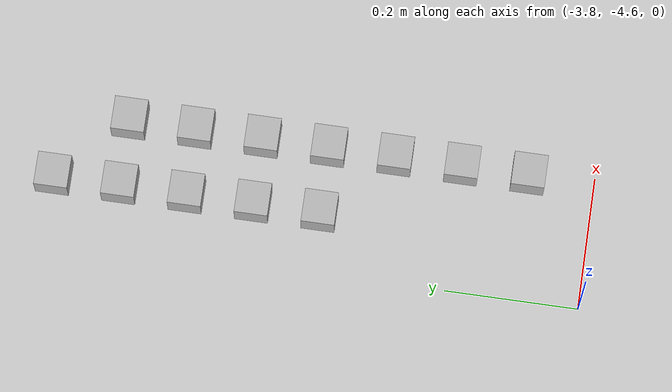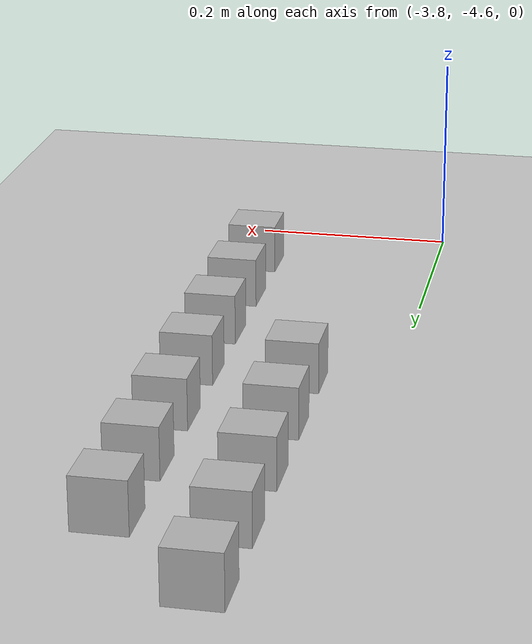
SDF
<sdf version="1.4">
 <world name="default">
  <model name="ground_plane">
   <static>1</static>
   <link name="link">
    <collision name="collision">
     <geometry><plane><normal>0 0 1</normal><size>100 100</size></plane></geometry>
     <surface><friction><ode><mu>100</mu><mu2>50</mu2></ode></friction></surface>
    </collision>
    <visual name="visual">
     <cast_shadows>0</cast_shadows>
     <geometry><plane><normal>0 0 1</normal><size>100 100</size></plane></geometry>
     <material>
      <script><uri>file://media/materials/scripts/gazebo.material</uri><name>Gazebo/Grey</name></script>
     </material>
    </visual>
    <velocity_decay><linear>0</linear><angular>0</angular></velocity_decay>
   </link>
  </model>
  <model name="at71">
   <static>0</static>
   <link name="link">
    <inertial>
     <mass>0.01</mass>
     <inertia><ixx>4e-05</ixx><ixy>0</ixy><ixz>0</ixz><iyy>4e-05</iyy><iyz>0</iyz><izz>4e-05</izz></inertia>
    </inertial>
    <visual name="visual">
     <transparency>0.1</transparency>
     <geometry><box><size>0.05 0.05 0.05</size></box></geometry>
     <material>
      <script>
       <uri>model://at0/materials/scripts</uri>
       <uri>model://at0/materials/textures</uri>
       <name>at0/Diffuse</name>
      </script>
     </material>
    </visual>
    <collision name="collision">
     <geometry><box><size>0.05 0.05 0.05</size></box></geometry>
     <surface><friction><ode><mu>0.8</mu><mu2>0.7</mu2></ode></friction></surface>
    </collision>
    <velocity_decay><linear>0</linear><angular>0</angular></velocity_decay>
   </link>
   <pose>-3.61043 -4.50066 0.024993 -2.9e-05 -2.9e-05 4e-06</pose>
  </model>
  <model name="at79">
   <static>0</static>
   <link name="link">
    <inertial>
     <mass>0.01</mass>
     <inertia><ixx>4e-05</ixx><ixy>0</ixy><ixz>0</ixz><iyy>4e-05</iyy><iyz>0</iyz><izz>4e-05</izz></inertia>
    </inertial>
    <visual name="visual">
     <transparency>0.1</transparency>
     <geometry><box><size>0.05 0.05 0.05</size></box></geometry>
     <material>
      <script>
       <uri>model://at0/materials/scripts</uri>
       <uri>model://at0/materials/textures</uri>
       <name>at0/Diffuse</name>
      </script>
     </material>
    </visual>
    <collision name="collision">
     <geometry><box><size>0.05 0.05 0.05</size></box></geometry>
     <surface><friction><ode><mu>0.8</mu><mu2>0.7</mu2></ode></friction></surface>
    </collision>
    <velocity_decay><linear>0</linear><angular>0</angular></velocity_decay>
   </link>
   <pose>-3.61043 -4.40066 0.024993 -2.9e-05 -2.9e-05 3e-06</pose>
  </model>
  <model name="at87">
   <static>0</static>
   <link name="link">
    <inertial>
     <mass>0.01</mass>
     <inertia><ixx>4e-05</ixx><ixy>0</ixy><ixz>0</ixz><iyy>4e-05</iyy><iyz>0</iyz><izz>4e-05</izz></inertia>
    </inertial>
    <visual name="visual">
     <transparency>0.1</transparency>
     <geometry><box><size>0.05 0.05 0.05</size></box></geometry>
     <material>
      <script>
       <uri>model://at0/materials/scripts</uri>
       <uri>model://at0/materials/textures</uri>
       <name>at0/Diffuse</name>
      </script>
     </material>
    </visual>
    <collision name="collision">
     <geometry><box><size>0.05 0.05 0.05</size></box></geometry>
     <surface><friction><ode><mu>0.8</mu><mu2>0.7</mu2></ode></friction></surface>
    </collision>
    <velocity_decay><linear>0</linear><angular>0</angular></velocity_decay>
   </link>
   <pose>-3.61043 -4.30066 0.024997 2.9e-05 2.9e-05 3e-06</pose>
  </model>
  <model name="at94">
   <static>0</static>
   <link name="link">
    <inertial>
     <mass>0.01</mass>
     <inertia><ixx>4e-05</ixx><ixy>0</ixy><ixz>0</ixz><iyy>4e-05</iyy><iyz>0</iyz><izz>4e-05</izz></inertia>
    </inertial>
    <visual name="visual">
     <transparency>0.1</transparency>
     <geometry><box><size>0.05 0.05 0.05</size></box></geometry>
     <material>
      <script>
       <uri>model://at0/materials/scripts</uri>
       <uri>model://at0/materials/textures</uri>
       <name>at0/Diffuse</name>
      </script>
     </material>
    </visual>
    <collision name="collision">
     <geometry><box><size>0.05 0.05 0.05</size></box></geometry>
     <surface><friction><ode><mu>0.8</mu><mu2>0.7</mu2></ode></friction></surface>
    </collision>
    <velocity_decay><linear>0</linear><angular>0</angular></velocity_decay>
   </link>
   <pose>-3.71043 -4.20066 0.024993 -2.9e-05 -2.9e-05 3e-06</pose>
  </model>
  <model name="at95">
   <static>0</static>
   <link name="link">
    <inertial>
     <mass>0.01</mass>
     <inertia><ixx>4e-05</ixx><ixy>0</ixy><ixz>0</ixz><iyy>4e-05</iyy><iyz>0</iyz><izz>4e-05</izz></inertia>
    </inertial>
    <visual name="visual">
     <transparency>0.1</transparency>
     <geometry><box><size>0.05 0.05 0.05</size></box></geometry>
     <material>
      <script>
       <uri>model://at0/materials/scripts</uri>
       <uri>model://at0/materials/textures</uri>
       <name>at0/Diffuse</name>
      </script>
     </material>
    </visual>
    <collision name="collision">
     <geometry><box><size>0.05 0.05 0.05</size></box></geometry>
     <surface><friction><ode><mu>0.8</mu><mu2>0.7</mu2></ode></friction></surface>
    </collision>
    <velocity_decay><linear>0</linear><angular>0</angular></velocity_decay>
   </link>
   <pose>-3.61043 -4.20066 0.024993 -2.9e-05 -2.9e-05 3e-06</pose>
  </model>
  <model name="at102">
   <static>0</static>
   <link name="link">
    <inertial>
     <mass>0.01</mass>
     <inertia><ixx>4e-05</ixx><ixy>0</ixy><ixz>0</ixz><iyy>4e-05</iyy><iyz>0</iyz><izz>4e-05</izz></inertia>
    </inertial>
    <visual name="visual">
     <transparency>0.1</transparency>
     <geometry><box><size>0.05 0.05 0.05</size></box></geometry>
     <material>
      <script>
       <uri>model://at0/materials/scripts</uri>
       <uri>model://at0/materials/textures</uri>
       <name>at0/Diffuse</name>
      </script>
     </material>
    </visual>
    <collision name="collision">
     <geometry><box><size>0.05 0.05 0.05</size></box></geometry>
     <surface><friction><ode><mu>0.8</mu><mu2>0.7</mu2></ode></friction></surface>
    </collision>
    <velocity_decay><linear>0</linear><angular>0</angular></velocity_decay>
   </link>
   <pose>-3.71043 -4.10066 0.024993 -2.9e-05 -2.9e-05 3e-06</pose>
  </model>
  <model name="at103">
   <static>0</static>
   <link name="link">
    <inertial>
     <mass>0.01</mass>
     <inertia><ixx>4e-05</ixx><ixy>0</ixy><ixz>0</ixz><iyy>4e-05</iyy><iyz>0</iyz><izz>4e-05</izz></inertia>
    </inertial>
    <visual name="visual">
     <transparency>0.1</transparency>
     <geometry><box><size>0.05 0.05 0.05</size></box></geometry>
     <material>
      <script>
       <uri>model://at0/materials/scripts</uri>
       <uri>model://at0/materials/textures</uri>
       <name>at0/Diffuse</name>
      </script>
     </material>
    </visual>
    <collision name="collision">
     <geometry><box><size>0.05 0.05 0.05</size></box></geometry>
     <surface><friction><ode><mu>0.8</mu><mu2>0.7</mu2></ode></friction></surface>
    </collision>
    <velocity_decay><linear>0</linear><angular>0</angular></velocity_decay>
   </link>
   <pose>-3.61043 -4.10066 0.024997 2.9e-05 2.9e-05 3e-06</pose>
  </model>
  <model name="at110">
   <static>0</static>
   <link name="link">
    <inertial>
     <mass>0.01</mass>
     <inertia><ixx>4e-05</ixx><ixy>0</ixy><ixz>0</ixz><iyy>4e-05</iyy><iyz>0</iyz><izz>4e-05</izz></inertia>
    </inertial>
    <visual name="visual">
     <transparency>0.1</transparency>
     <geometry><box><size>0.05 0.05 0.05</size></box></geometry>
     <material>
      <script>
       <uri>model://at0/materials/scripts</uri>
       <uri>model://at0/materials/textures</uri>
       <name>at0/Diffuse</name>
      </script>
     </material>
    </visual>
    <collision name="collision">
     <geometry><box><size>0.05 0.05 0.05</size></box></geometry>
     <surface><friction><ode><mu>0.8</mu><mu2>0.7</mu2></ode></friction></surface>
    </collision>
    <velocity_decay><linear>0</linear><angular>0</angular></velocity_decay>
   </link>
   <pose>-3.71043 -4.00066 0.024993 -2.9e-05 -2.9e-05 3e-06</pose>
  </model>
  <model name="at111">
   <static>0</static>
   <link name="link">
    <inertial>
     <mass>0.01</mass>
     <inertia><ixx>4e-05</ixx><ixy>0</ixy><ixz>0</ixz><iyy>4e-05</iyy><iyz>0</iyz><izz>4e-05</izz></inertia>
    </inertial>
    <visual name="visual">
     <transparency>0.1</transparency>
     <geometry><box><size>0.05 0.05 0.05</size></box></geometry>
     <material>
      <script>
       <uri>model://at0/materials/scripts</uri>
       <uri>model://at0/materials/textures</uri>
       <name>at0/Diffuse</name>
      </script>
     </material>
    </visual>
    <collision name="collision">
     <geometry><box><size>0.05 0.05 0.05</size></box></geometry>
     <surface><friction><ode><mu>0.8</mu><mu2>0.7</mu2></ode></friction></surface>
    </collision>
    <velocity_decay><linear>0</linear><angular>0</angular></velocity_decay>
   </link>
   <pose>-3.61043 -4.00066 0.024993 -2.9e-05 -2.9e-05 2e-06</pose>
  </model>
  <model name="at118">
   <static>0</static>
   <link name="link">
    <inertial>
     <mass>0.01</mass>
     <inertia><ixx>4e-05</ixx><ixy>0</ixy><ixz>0</ixz><iyy>4e-05</iyy><iyz>0</iyz><izz>4e-05</izz></inertia>
    </inertial>
    <visual name="visual">
     <transparency>0.1</transparency>
     <geometry><box><size>0.05 0.05 0.05</size></box></geometry>
     <material>
      <script>
       <uri>model://at0/materials/scripts</uri>
       <uri>model://at0/materials/textures</uri>
       <name>at0/Diffuse</name>
      </script>
     </material>
    </visual>
    <collision name="collision">
     <geometry><box><size>0.05 0.05 0.05</size></box></geometry>
     <surface><friction><ode><mu>0.8</mu><mu2>0.7</mu2></ode></friction></surface>
    </collision>
    <velocity_decay><linear>0</linear><angular>0</angular></velocity_decay>
   </link>
   <pose>-3.71043 -3.90066 0.024997 2.9e-05 2.9e-05 2e-06</pose>
  </model>
  <model name="at119">
   <static>0</static>
   <link name="link">
    <inertial>
     <mass>0.01</mass>
     <inertia><ixx>4e-05</ixx><ixy>0</ixy><ixz>0</ixz><iyy>4e-05</iyy><iyz>0</iyz><izz>4e-05</izz></inertia>
    </inertial>
    <visual name="visual">
     <transparency>0.1</transparency>
     <geometry><box><size>0.05 0.05 0.05</size></box></geometry>
     <material>
      <script>
       <uri>model://at0/materials/scripts</uri>
       <uri>model://at0/materials/textures</uri>
       <name>at0/Diffuse</name>
      </script>
     </material>
    </visual>
    <collision name="collision">
     <geometry><box><size>0.05 0.05 0.05</size></box></geometry>
     <surface><friction><ode><mu>0.8</mu><mu2>0.7</mu2></ode></friction></surface>
    </collision>
    <velocity_decay><linear>0</linear><angular>0</angular></velocity_decay>
   </link>
   <pose>-3.61043 -3.90066 0.024997 2.9e-05 2.9e-05 2e-06</pose>
  </model>
  <model name="at126">
   <static>0</static>
   <link name="link">
    <inertial>
     <mass>0.01</mass>
     <inertia><ixx>4e-05</ixx><ixy>0</ixy><ixz>0</ixz><iyy>4e-05</iyy><iyz>0</iyz><izz>4e-05</izz></inertia>
    </inertial>
    <visual name="visual">
     <transparency>0.1</transparency>
     <geometry><box><size>0.05 0.05 0.05</size></box></geometry>
     <material>
      <script>
       <uri>model://at0/materials/scripts</uri>
       <uri>model://at0/materials/textures</uri>
       <name>at0/Diffuse</name>
      </script>
     </material>
    </visual>
    <collision name="collision">
     <geometry><box><size>0.05 0.05 0.05</size></box></geometry>
     <surface><friction><ode><mu>0.8</mu><mu2>0.7</mu2></ode></friction></surface>
    </collision>
    <velocity_decay><linear>0</linear><angular>0</angular></velocity_decay>
   </link>
   <pose>-3.71043 -3.80066 0.024993 -2.9e-05 -2.9e-05 2e-06</pose>
  </model>
 </world>
</sdf>
